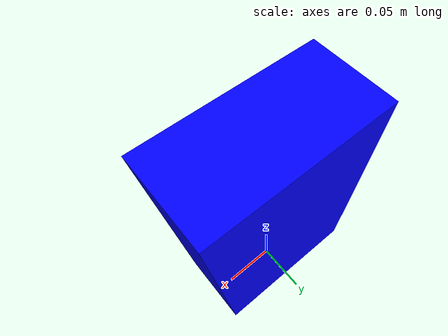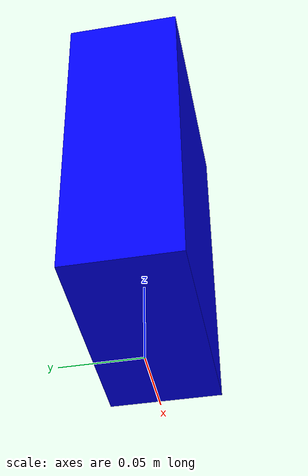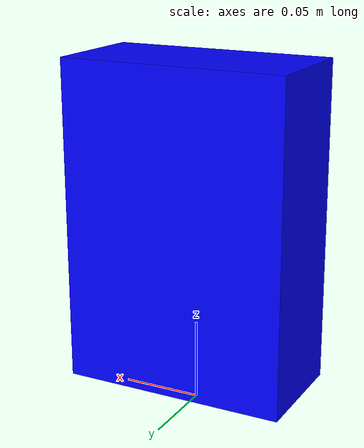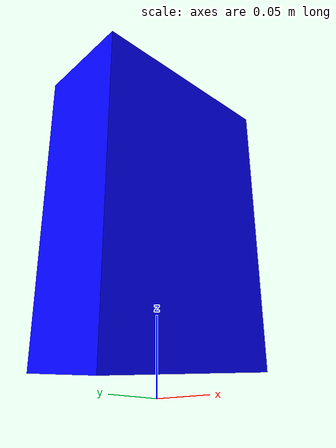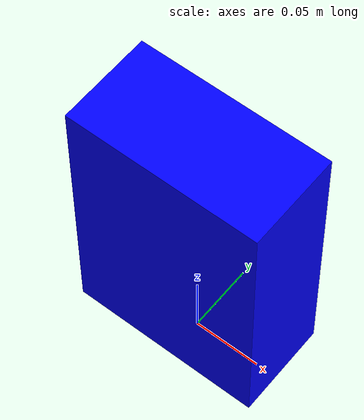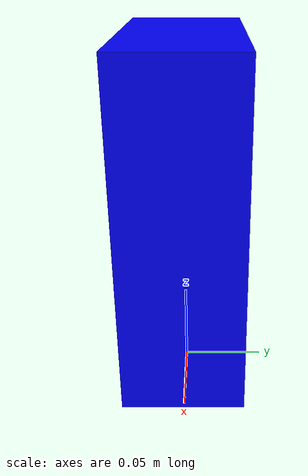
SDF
<?xml version="1.0" ?>
<sdf version="1.5">
  <model name="boxNew">
    <link name="link">
      <gravity>0</gravity>
      <pose>0 0 0.115 0 0 0</pose>
      <inertial>
        <mass>0.390</mass>
        <inertia>
          <ixx>0.00058</ixx>
          <ixy>0</ixy>
          <ixz>0</ixz>
          <iyy>0.00058</iyy>
          <iyz>0</iyz>
          <izz>0.00019</izz>
        </inertia>
      </inertial>
      <collision name="collision">
        <geometry>
          <box>
            <size>0.14 0.07 0.2</size>
          </box>
        </geometry>
      </collision>
      <visual name="visual">
        <geometry>
          <box>
            <size>0.14 0.07 0.2</size>
          </box>
        </geometry>
        <material>
          <diffuse>0.0 0.0 1.0 1.0</diffuse>
        </material>
      </visual>
    </link>
  </model>
</sdf>
